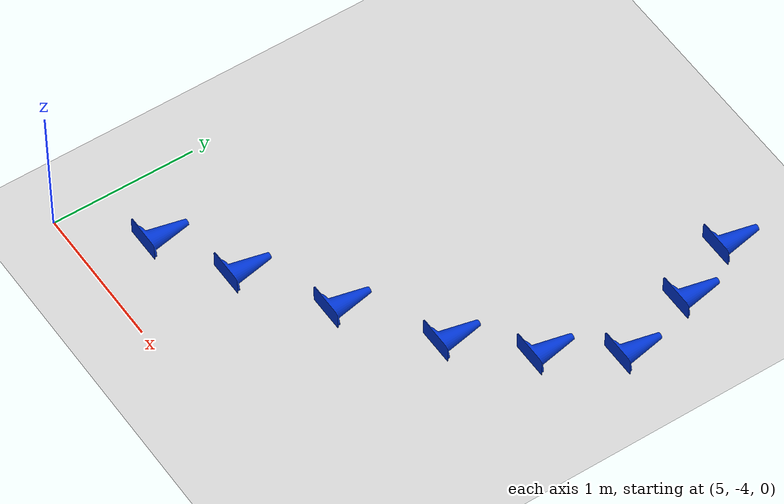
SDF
<sdf version="1.7">
 <world name="default">
  <model name="ground_plane">
   <static>1</static>
   <link name="link">
    <collision name="collision">
     <geometry><plane><normal>0 0 1</normal><size>100 100</size></plane></geometry>
     <surface><friction><ode><mu>100</mu><mu2>50</mu2></ode></friction></surface>
    </collision>
    <visual name="visual">
     <cast_shadows>0</cast_shadows>
     <geometry><plane><normal>0 0 1</normal><size>100 100</size></plane></geometry>
     <material>
      <script><uri>file://media/materials/scripts/gazebo.material</uri><name>Gazebo/Grey</name></script>
     </material>
    </visual>
   </link>
  </model>
  <model name="cone_yellow_28">
   <static>1</static>
   <link name="link">
    <visual name="visual">
     <geometry>
      <mesh><uri>model://cone_yellow/meshes/cone.stl</uri><scale>0.001 0.001 0.001</scale></mesh>
     </geometry>
     <material><ambient>1 0.82 0 1</ambient><diffuse>1 0.82 0 1</diffuse></material>
    </visual>
    <collision name="collision">
     <geometry>
      <mesh><uri>model://cone_yellow/meshes/cone.stl</uri><scale>0.001 0.001 0.001</scale></mesh>
     </geometry>
    </collision>
    <inertial>
     <mass>0.1</mass>
     <inertia><ixx>0.0001</ixx><iyy>0.0001</iyy><izz>0.0001</izz><ixy>0</ixy><ixz>0</ixz><iyz>0</iyz></inertia>
    </inertial>
   </link>
   <pose>6.23623 -1.23221 0 0 -0 0</pose>
  </model>
  <model name="cone_yellow_29">
   <static>1</static>
   <link name="link">
    <visual name="visual">
     <geometry>
      <mesh><uri>model://cone_yellow/meshes/cone.stl</uri><scale>0.001 0.001 0.001</scale></mesh>
     </geometry>
     <material><ambient>1 0.82 0 1</ambient><diffuse>1 0.82 0 1</diffuse></material>
    </visual>
    <collision name="collision">
     <geometry>
      <mesh><uri>model://cone_yellow/meshes/cone.stl</uri><scale>0.001 0.001 0.001</scale></mesh>
     </geometry>
    </collision>
    <inertial>
     <mass>0.1</mass>
     <inertia><ixx>0.0001</ixx><iyy>0.0001</iyy><izz>0.0001</izz><ixy>0</ixy><ixz>0</ixz><iyz>0</iyz></inertia>
    </inertial>
   </link>
   <pose>6.44346 -1.63667 0 0 -0 0</pose>
  </model>
  <model name="cone_yellow_30">
   <static>1</static>
   <link name="link">
    <visual name="visual">
     <geometry>
      <mesh><uri>model://cone_yellow/meshes/cone.stl</uri><scale>0.001 0.001 0.001</scale></mesh>
     </geometry>
     <material><ambient>1 0.82 0 1</ambient><diffuse>1 0.82 0 1</diffuse></material>
    </visual>
    <collision name="collision">
     <geometry>
      <mesh><uri>model://cone_yellow/meshes/cone.stl</uri><scale>0.001 0.001 0.001</scale></mesh>
     </geometry>
    </collision>
    <inertial>
     <mass>0.1</mass>
     <inertia><ixx>0.0001</ixx><iyy>0.0001</iyy><izz>0.0001</izz><ixy>0</ixy><ixz>0</ixz><iyz>0</iyz></inertia>
    </inertial>
   </link>
   <pose>5.92763 -2.13661 0 0 -0 0</pose>
  </model>
  <model name="cone_yellow_31">
   <static>1</static>
   <link name="link">
    <visual name="visual">
     <geometry>
      <mesh><uri>model://cone_yellow/meshes/cone.stl</uri><scale>0.001 0.001 0.001</scale></mesh>
     </geometry>
     <material><ambient>1 0.82 0 1</ambient><diffuse>1 0.82 0 1</diffuse></material>
    </visual>
    <collision name="collision">
     <geometry>
      <mesh><uri>model://cone_yellow/meshes/cone.stl</uri><scale>0.001 0.001 0.001</scale></mesh>
     </geometry>
    </collision>
    <inertial>
     <mass>0.1</mass>
     <inertia><ixx>0.0001</ixx><iyy>0.0001</iyy><izz>0.0001</izz><ixy>0</ixy><ixz>0</ixz><iyz>0</iyz></inertia>
    </inertial>
   </link>
   <pose>5.3416 -2.35898 0 0 -0 0</pose>
  </model>
  <model name="cone_blue_35">
   <static>1</static>
   <link name="link">
    <visual name="visual">
     <geometry><mesh><uri>model://cone_blue/meshes/cone.stl</uri><scale>0.001 0.001 0.001</scale></mesh></geometry>
     <material><ambient>0 0.2 0.8 1</ambient><diffuse>0 0.2 0.8 1</diffuse></material>
    </visual>
    <collision name="collision">
     <geometry><mesh><uri>model://cone_blue/meshes/cone.stl</uri><scale>0.001 0.001 0.001</scale></mesh></geometry>
    </collision>
    <inertial>
     <mass>0.1</mass>
     <inertia><ixx>0.0001</ixx><iyy>0.0001</iyy><izz>0.0001</izz><ixy>0</ixy><ixz>0</ixz><iyz>0</iyz></inertia>
    </inertial>
   </link>
   <pose>7.4158 -0.770736 0 0 -0 0</pose>
  </model>
  <model name="cone_blue_36">
   <static>1</static>
   <link name="link">
    <visual name="visual">
     <geometry><mesh><uri>model://cone_blue/meshes/cone.stl</uri><scale>0.001 0.001 0.001</scale></mesh></geometry>
     <material><ambient>0 0.2 0.8 1</ambient><diffuse>0 0.2 0.8 1</diffuse></material>
    </visual>
    <collision name="collision">
     <geometry><mesh><uri>model://cone_blue/meshes/cone.stl</uri><scale>0.001 0.001 0.001</scale></mesh></geometry>
    </collision>
    <inertial>
     <mass>0.1</mass>
     <inertia><ixx>0.0001</ixx><iyy>0.0001</iyy><izz>0.0001</izz><ixy>0</ixy><ixz>0</ixz><iyz>0</iyz></inertia>
    </inertial>
   </link>
   <pose>7.61022 -1.20773 0 0 -0 0</pose>
  </model>
  <model name="cone_blue_37">
   <static>1</static>
   <link name="link">
    <visual name="visual">
     <geometry><mesh><uri>model://cone_blue/meshes/cone.stl</uri><scale>0.001 0.001 0.001</scale></mesh></geometry>
     <material><ambient>0 0.2 0.8 1</ambient><diffuse>0 0.2 0.8 1</diffuse></material>
    </visual>
    <collision name="collision">
     <geometry><mesh><uri>model://cone_blue/meshes/cone.stl</uri><scale>0.001 0.001 0.001</scale></mesh></geometry>
    </collision>
    <inertial>
     <mass>0.1</mass>
     <inertia><ixx>0.0001</ixx><iyy>0.0001</iyy><izz>0.0001</izz><ixy>0</ixy><ixz>0</ixz><iyz>0</iyz></inertia>
    </inertial>
   </link>
   <pose>7.75123 -1.73565 0 0 -0 0</pose>
  </model>
  <model name="cone_blue_38">
   <static>1</static>
   <link name="link">
    <visual name="visual">
     <geometry><mesh><uri>model://cone_blue/meshes/cone.stl</uri><scale>0.001 0.001 0.001</scale></mesh></geometry>
     <material><ambient>0 0.2 0.8 1</ambient><diffuse>0 0.2 0.8 1</diffuse></material>
    </visual>
    <collision name="collision">
     <geometry><mesh><uri>model://cone_blue/meshes/cone.stl</uri><scale>0.001 0.001 0.001</scale></mesh></geometry>
    </collision>
    <inertial>
     <mass>0.1</mass>
     <inertia><ixx>0.0001</ixx><iyy>0.0001</iyy><izz>0.0001</izz><ixy>0</ixy><ixz>0</ixz><iyz>0</iyz></inertia>
    </inertial>
   </link>
   <pose>7.46332 -2.17357 0 0 -0 0</pose>
  </model>
  <model name="cone_blue_39">
   <static>1</static>
   <link name="link">
    <visual name="visual">
     <geometry><mesh><uri>model://cone_blue/meshes/cone.stl</uri><scale>0.001 0.001 0.001</scale></mesh></geometry>
     <material><ambient>0 0.2 0.8 1</ambient><diffuse>0 0.2 0.8 1</diffuse></material>
    </visual>
    <collision name="collision">
     <geometry><mesh><uri>model://cone_blue/meshes/cone.stl</uri><scale>0.001 0.001 0.001</scale></mesh></geometry>
    </collision>
    <inertial>
     <mass>0.1</mass>
     <inertia><ixx>0.0001</ixx><iyy>0.0001</iyy><izz>0.0001</izz><ixy>0</ixy><ixz>0</ixz><iyz>0</iyz></inertia>
    </inertial>
   </link>
   <pose>7.06662 -2.57958 0 0 -0 0</pose>
  </model>
  <model name="cone_blue_40">
   <static>1</static>
   <link name="link">
    <visual name="visual">
     <geometry><mesh><uri>model://cone_blue/meshes/cone.stl</uri><scale>0.001 0.001 0.001</scale></mesh></geometry>
     <material><ambient>0 0.2 0.8 1</ambient><diffuse>0 0.2 0.8 1</diffuse></material>
    </visual>
    <collision name="collision">
     <geometry><mesh><uri>model://cone_blue/meshes/cone.stl</uri><scale>0.001 0.001 0.001</scale></mesh></geometry>
    </collision>
    <inertial>
     <mass>0.1</mass>
     <inertia><ixx>0.0001</ixx><iyy>0.0001</iyy><izz>0.0001</izz><ixy>0</ixy><ixz>0</ixz><iyz>0</iyz></inertia>
    </inertial>
   </link>
   <pose>6.49464 -2.98362 0 0 -0 0</pose>
  </model>
  <model name="cone_blue_41">
   <static>1</static>
   <link name="link">
    <visual name="visual">
     <geometry><mesh><uri>model://cone_blue/meshes/cone.stl</uri><scale>0.001 0.001 0.001</scale></mesh></geometry>
     <material><ambient>0 0.2 0.8 1</ambient><diffuse>0 0.2 0.8 1</diffuse></material>
    </visual>
    <collision name="collision">
     <geometry><mesh><uri>model://cone_blue/meshes/cone.stl</uri><scale>0.001 0.001 0.001</scale></mesh></geometry>
    </collision>
    <inertial>
     <mass>0.1</mass>
     <inertia><ixx>0.0001</ixx><iyy>0.0001</iyy><izz>0.0001</izz><ixy>0</ixy><ixz>0</ixz><iyz>0</iyz></inertia>
    </inertial>
   </link>
   <pose>5.94123 -3.33901 0 0 -0 0</pose>
  </model>
  <model name="cone_blue_42">
   <static>1</static>
   <link name="link">
    <visual name="visual">
     <geometry><mesh><uri>model://cone_blue/meshes/cone.stl</uri><scale>0.001 0.001 0.001</scale></mesh></geometry>
     <material><ambient>0 0.2 0.8 1</ambient><diffuse>0 0.2 0.8 1</diffuse></material>
    </visual>
    <collision name="collision">
     <geometry><mesh><uri>model://cone_blue/meshes/cone.stl</uri><scale>0.001 0.001 0.001</scale></mesh></geometry>
    </collision>
    <inertial>
     <mass>0.1</mass>
     <inertia><ixx>0.0001</ixx><iyy>0.0001</iyy><izz>0.0001</izz><ixy>0</ixy><ixz>0</ixz><iyz>0</iyz></inertia>
    </inertial>
   </link>
   <pose>5.44635 -3.61454 0 0 -0 0</pose>
  </model>
 </world>
</sdf>
